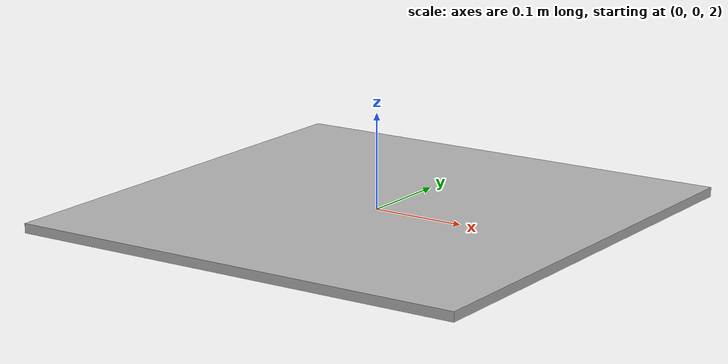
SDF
<?xml version="1.0" ?>
<sdf version="1.6">
  <world name="ramp_world">

    <include>
      <uri>model://ground_plane</uri>
    </include>

    <include>
      <uri>model://sun</uri>
    </include>

    <physics type="bullet" name="bullet_physics">
      <max_step_size>0.001</max_step_size>
      <real_time_update_rate>1000</real_time_update_rate>
    </physics>

    <model name="ramp">
          <static>true</static>
          <link name="ramp_link">

            <collision name="collision">
              <geometry>
                <box>
                  <size>50 50 0.1</size>
                </box>
              </geometry>
              <surface>
                <friction>
                  <ode>
                    <mu>0.8</mu>
                    <mu2>0.8</mu2>
                    <kp>100000</kp>
                    <kd>1</kd>
                  </ode>
                </friction>
              </surface>
            </collision>

            <visual name="visual">
              <geometry>
                <box>
                  <size>50 50 0.1</size>
                </box>
              </geometry>
              <material>
                <ambient>0.7 0.7 0.7 1</ambient>
                <diffuse>0.7 0.7 0.7 1</diffuse>
              </material>
            </visual>

            <pose>0 0 1 0 0 0</pose>

          </link>
        </model>

        <model name="support">
          <static>true</static>
          <link name="support_link">

            <collision name="collision">
              <geometry>
                <box>
                  <size>0.5 0.5 0.01</size>
                </box>
              </geometry>
              <surface>
                <friction>
                  <ode>
                    <mu>10</mu>
                    <mu2>10</mu2>
                    <kp>100000</kp>
                    <kd>1</kd>
                  </ode>
                </friction>
              </surface>
            </collision>

            <visual name="visual">
              <geometry>
                <box>
                  <size>0.5 0.5 0.01</size>
                </box>
              </geometry>
              <material>
                <ambient>0.7 0.7 0.7 1</ambient>
                <diffuse>0.7 0.7 0.7 1</diffuse>
              </material>
            </visual>

            <pose>0 0 2 0 0 0</pose>

          </link>
        </model>

  </world>
</sdf>
